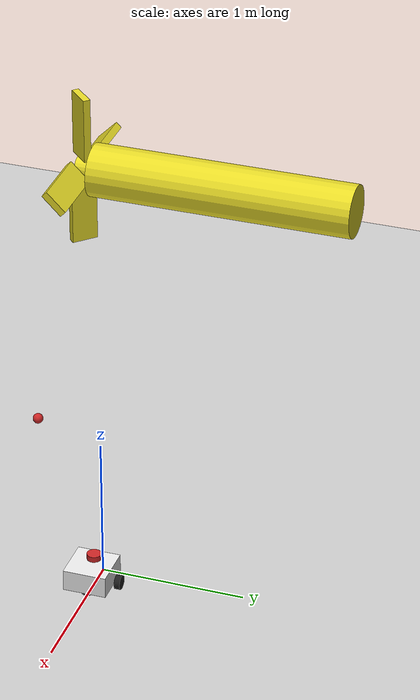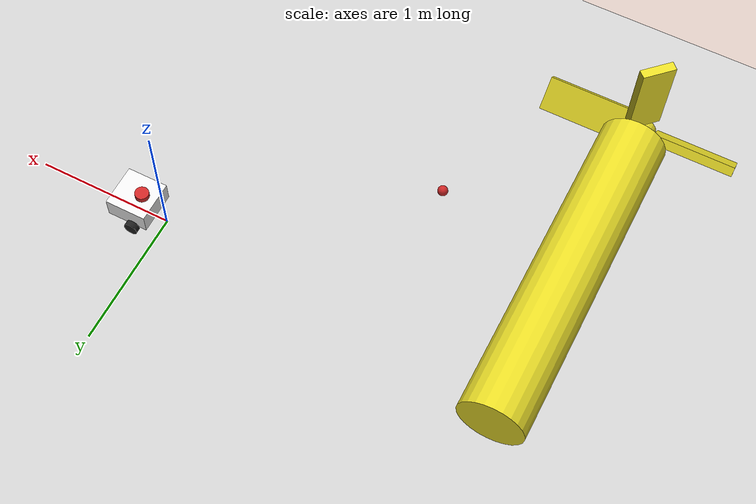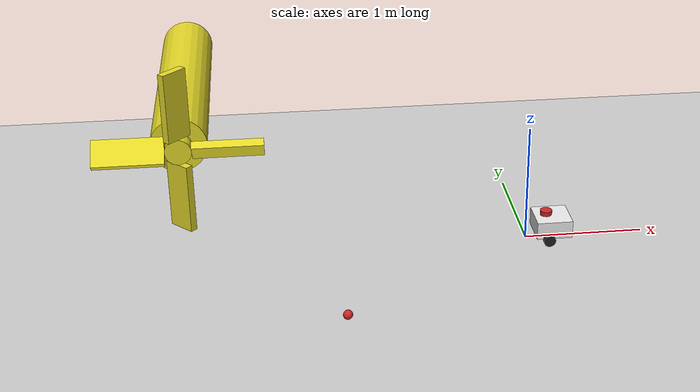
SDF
<sdf version="1.7">
 <world name="default">
  <light name="sun" type="directional">
   <pose>0 0 10 0 -0 0</pose>
   <diffuse>0.8 0.8 0.8 1</diffuse>
   <specular>0.2 0.2 0.2 1</specular>
   <attenuation>
    <range>1000</range>
    <constant>0.9</constant>
    <linear>0.01</linear>
    <quadratic>0.001</quadratic>
   </attenuation>
   <direction>-0.5 0.1 -0.9</direction>
   <spot><inner_angle>0</inner_angle><outer_angle>0</outer_angle><falloff>0</falloff></spot>
  </light>
  <model name="ground_plane">
   <static>1</static>
   <link name="link">
    <collision name="collision">
     <geometry><plane><normal>0 0 1</normal><size>100 100</size></plane></geometry>
     <surface>
      <contact><collide_bitmask>65535</collide_bitmask></contact>
      <friction><ode><mu>100</mu><mu2>50</mu2></ode></friction>
     </surface>
    </collision>
    <visual name="visual">
     <cast_shadows>0</cast_shadows>
     <geometry><plane><normal>0 0 1</normal><size>100 100</size></plane></geometry>
     <material>
      <script><uri>file://media/materials/scripts/gazebo.material</uri><name>Gazebo/Grey</name></script>
     </material>
    </visual>
   </link>
  </model>
  <gravity>0 0 -9.8</gravity>
  <magnetic_field>6e-06 2.3e-05 -4.2e-05</magnetic_field>
  <atmosphere type="adiabatic"/>
  <physics type="ode">
   <max_step_size>0.001</max_step_size>
   <real_time_factor>1</real_time_factor>
   <real_time_update_rate>1000</real_time_update_rate>
  </physics>
  <scene><ambient>0.4 0.4 0.4 1</ambient><background>0.7 0.7 0.7 1</background><shadows>1</shadows></scene>
  <audio><device>default</device></audio>
  <spherical_coordinates>
   <surface_model>EARTH_WGS84</surface_model>
   <latitude_deg>0</latitude_deg>
   <longitude_deg>0</longitude_deg>
   <elevation>0</elevation>
   <heading_deg>0</heading_deg>
  </spherical_coordinates>
  <model name="my_bot">
   <link name="base_link">
    <inertial>
     <pose>0.055714 0 0.078571 0 -0 0</pose>
     <mass>0.7</mass>
     <inertia>
      <ixx>0.0064169</ixx>
      <ixy>0</ixy>
      <ixz>0.00118929</ixz>
      <iyy>0.00745405</iyy>
      <iyz>0</iyz>
      <izz>0.00876214</izz>
     </inertia>
    </inertial>
    <collision name="base_link_fixed_joint_lump__chassis_collision">
     <pose>0.05 0 0.075 0 -0 0</pose>
     <geometry><box><size>0.3 0.3 0.15</size></box></geometry>
    </collision>
    <collision name="base_link_fixed_joint_lump__caster_wheel_collision_1">
     <pose>0.14 0 0 0 -0 0</pose>
     <geometry><sphere><radius>0.05</radius></sphere></geometry>
     <surface><friction><ode><mu>0.001</mu><mu2>0.001</mu2></ode></friction></surface>
    </collision>
    <collision name="base_link_fixed_joint_lump__laser_frame_collision_2">
     <pose>0 0 0.175 0 -0 0</pose>
     <geometry><cylinder><length>0.04</length><radius>0.05</radius></cylinder></geometry>
    </collision>
    <visual name="base_link_fixed_joint_lump__chassis_visual">
     <pose>0.05 0 0.075 0 -0 0</pose>
     <geometry><box><size>0.3 0.3 0.15</size></box></geometry>
     <material>
      <script><name>Gazebo/White</name><uri>file://media/materials/scripts/gazebo.material</uri></script>
     </material>
    </visual>
    <visual name="base_link_fixed_joint_lump__caster_wheel_visual_1">
     <pose>0.14 0 0 0 -0 0</pose>
     <geometry><sphere><radius>0.05</radius></sphere></geometry>
     <material>
      <script><name>Gazebo/Black</name><uri>file://media/materials/scripts/gazebo.material</uri></script>
     </material>
    </visual>
    <visual name="base_link_fixed_joint_lump__laser_frame_visual_2">
     <pose>0 0 0.175 0 -0 0</pose>
     <geometry><cylinder><length>0.04</length><radius>0.05</radius></cylinder></geometry>
     <material>
      <script><name>Gazebo/Red</name><uri>file://media/materials/scripts/gazebo.material</uri></script>
     </material>
    </visual>
    <sensor name="laser" type="ray">
     <visualize>1</visualize>
     <update_rate>10</update_rate>
     <ray>
      <scan>
       <horizontal>
        <samples>360</samples>
        <min_angle>-3.14</min_angle>
        <max_angle>3.14</max_angle>
        <resolution>1</resolution>
       </horizontal>
       <vertical><samples>1</samples><min_angle>0</min_angle><max_angle>0</max_angle></vertical>
      </scan>
      <range><min>0.3</min><max>12</max></range>
     </ray>
     <plugin name="laser_controller" filename="libgazebo_ros_ray_sensor.so">
      <ros><argument>~/out:=scan</argument></ros>
      <output_type>sensor_msgs/LaserScan</output_type>
      <frame_name>laser_frame</frame_name>
     </plugin>
     <pose>0 0 0.175 0 -0 0</pose>
    </sensor>
   </link>
   <joint name="left_wheel_joint" type="revolute">
    <pose relative_to="base_link">0 0.175 0 -1.5708 0 0</pose>
    <parent>base_link</parent>
    <child>left_wheel</child>
    <axis>
     <xyz>0 0 1</xyz>
     <limit><lower>-1e+16</lower><upper>1e+16</upper></limit>
     <dynamics><spring_reference>0</spring_reference><spring_stiffness>0</spring_stiffness></dynamics>
    </axis>
   </joint>
   <link name="left_wheel">
    <pose relative_to="left_wheel_joint">0 0 0 0 -0 0</pose>
    <inertial>
     <mass>0.1</mass>
     <inertia>
      <ixx>8.33333e-05</ixx>
      <ixy>0</ixy>
      <ixz>0</ixz>
      <iyy>8.33333e-05</iyy>
      <iyz>0</iyz>
      <izz>0.000125</izz>
     </inertia>
    </inertial>
    <collision name="left_wheel_collision">
     <geometry><cylinder><length>0.04</length><radius>0.05</radius></cylinder></geometry>
    </collision>
    <visual name="left_wheel_visual">
     <geometry><cylinder><length>0.04</length><radius>0.05</radius></cylinder></geometry>
     <material>
      <script><name>Gazebo/Black</name><uri>file://media/materials/scripts/gazebo.material</uri></script>
     </material>
    </visual>
   </link>
   <joint name="right_wheel_joint" type="revolute">
    <pose relative_to="base_link">0 -0.175 0 1.5708 -0 0</pose>
    <parent>base_link</parent>
    <child>right_wheel</child>
    <axis>
     <xyz>0 0 -1</xyz>
     <limit><lower>-1e+16</lower><upper>1e+16</upper></limit>
     <dynamics><spring_reference>0</spring_reference><spring_stiffness>0</spring_stiffness></dynamics>
    </axis>
   </joint>
   <link name="right_wheel">
    <pose relative_to="right_wheel_joint">0 0 0 0 -0 0</pose>
    <inertial>
     <mass>0.1</mass>
     <inertia>
      <ixx>8.33333e-05</ixx>
      <ixy>0</ixy>
      <ixz>0</ixz>
      <iyy>8.33333e-05</iyy>
      <iyz>0</iyz>
      <izz>0.000125</izz>
     </inertia>
    </inertial>
    <collision name="right_wheel_collision">
     <geometry><cylinder><length>0.04</length><radius>0.05</radius></cylinder></geometry>
    </collision>
    <visual name="right_wheel_visual">
     <geometry><cylinder><length>0.04</length><radius>0.05</radius></cylinder></geometry>
     <material>
      <script><name>Gazebo/Black</name><uri>file://media/materials/scripts/gazebo.material</uri></script>
     </material>
    </visual>
   </link>
   <static>0</static>
   <plugin name="diff_drive" filename="libgazebo_ros_diff_drive.so">
    <left_joint>left_wheel_joint</left_joint>
    <right_joint>right_wheel_joint</right_joint>
    <wheel_separation>0.35</wheel_separation>
    <wheel_diameter>0.1</wheel_diameter>
    <max_wheel_torque>200</max_wheel_torque>
    <max_wheel_acceleration>10.0</max_wheel_acceleration>
    <odometry_frame>odom</odometry_frame>
    <robot_base_frame>base_link</robot_base_frame>
    <publish_odom>1</publish_odom>
    <publish_odom_tf>1</publish_odom_tf>
    <publish_wheel_tf>1</publish_wheel_tf>
   </plugin>
   <pose>0.168657 -0.00011 0.049998 -1.5e-05 -1.8e-05 0.001924</pose>
  </model>
  <model name="cricket_ball">
   <link name="link">
    <pose>0 0 0.0375 0 -0 0</pose>
    <inertial>
     <mass>0.1467</mass>
     <inertia>
      <ixx>8.25187e-05</ixx>
      <ixy>0</ixy>
      <ixz>0</ixz>
      <iyy>8.25187e-05</iyy>
      <iyz>0</iyz>
      <izz>8.25187e-05</izz>
     </inertia>
    </inertial>
    <collision name="collision">
     <geometry><sphere><radius>0.0375</radius></sphere></geometry>
     <surface>
      <contact>
       <poissons_ratio>0.347</poissons_ratio>
       <elastic_modulus>8.8e+09</elastic_modulus>
       <ode><kp>100000</kp><kd>100</kd><max_vel>100</max_vel><min_depth>0.001</min_depth></ode>
      </contact>
      <friction>
       <torsional>
        <coefficient>1</coefficient>
        <use_patch_radius>0</use_patch_radius>
        <surface_radius>0.01</surface_radius>
       </torsional>
      </friction>
     </surface>
    </collision>
    <visual name="visual">
     <geometry><sphere><radius>0.0375</radius></sphere></geometry>
     <material>
      <script><uri>file://media/materials/scripts/gazebo.material</uri><name>Gazebo/Red</name></script>
     </material>
    </visual>
    <velocity_decay><linear>0</linear><angular>0.005</angular></velocity_decay>
   </link>
   <pose>-1.59212 -1.08784 -0.001014 0 -0 0</pose>
  </model>
  <model name="submarine">
   <pose>-2.74653 -0.056665 1.50483 1.57182 -0 0</pose>
   <link name="body">
    <inertial>
     <mass>251.327</mass>
     <inertia><ixx>86.2891</ixx><ixy>0</ixy><ixz>0</ixz><iyy>86.2891</iyy><iyz>0</iyz><izz>5.02655</izz></inertia>
    </inertial>
    <visual name="body_visual">
     <geometry><cylinder><radius>0.2</radius><length>2</length></cylinder></geometry>
     <material>
      <script><uri>file://media/materials/scripts/gazebo.material</uri><name>Gazebo/Yellow</name></script>
     </material>
    </visual>
    <collision name="body_collision">
     <geometry><cylinder><radius>0.2</radius><length>2</length></cylinder></geometry>
    </collision>
    <visual name="spacer_visual">
     <pose>0 0 1.05855 0 -0 0</pose>
     <geometry><cylinder><radius>0.0933402</radius><length>0.127211</length></cylinder></geometry>
     <material>
      <script><uri>file://media/materials/scripts/gazebo.material</uri><name>Gazebo/Yellow</name></script>
     </material>
    </visual>
   </link>
   <link name="propeller">
    <pose>0 0 1.09 3.14159 -0 0</pose>
    <inertial>
     <mass>21.82</mass>
     <inertia>
      <ixx>0.459994</ixx>
      <ixy>0</ixy>
      <ixz>0</ixz>
      <iyy>0.459994</iyy>
      <iyz>0</iyz>
      <izz>0.909167</izz>
     </inertia>
    </inertial>
    <visual name="blade1_visual">
     <pose>0.34334 0 0 0.785398 -0 0</pose>
     <geometry><box><size>0.5 0.2 0.05455</size></box></geometry>
     <material>
      <script><uri>file://media/materials/scripts/gazebo.material</uri><name>Gazebo/Yellow</name></script>
     </material>
    </visual>
    <collision name="blade1_collision">
     <pose>0.34334 0 0 0.785398 -0 0</pose>
     <geometry><box><size>0.5 0.2 0.05455</size></box></geometry>
    </collision>
    <visual name="blade2_visual">
     <pose>0 0.34334 0 0.785398 0 1.5708</pose>
     <geometry><box><size>0.5 0.2 0.05455</size></box></geometry>
     <material>
      <script><uri>file://media/materials/scripts/gazebo.material</uri><name>Gazebo/Yellow</name></script>
     </material>
    </visual>
    <collision name="blade2_collision">
     <pose>0 0.34334 0 0.785398 0 1.5708</pose>
     <geometry><box><size>0.5 0.2 0.05455</size></box></geometry>
    </collision>
    <visual name="blade3_visual">
     <pose>-0.34334 -0 0 -0.785398 0 0</pose>
     <geometry><box><size>0.5 0.2 0.05455</size></box></geometry>
     <material>
      <script><uri>file://media/materials/scripts/gazebo.material</uri><name>Gazebo/Yellow</name></script>
     </material>
    </visual>
    <collision name="blade3_collision">
     <pose>-0.34334 -0 0 -0.785398 0 0</pose>
     <geometry><box><size>0.5 0.2 0.05455</size></box></geometry>
    </collision>
    <visual name="blade4_visual">
     <pose>-0 -0.34334 0 -0.785398 -0 1.5708</pose>
     <geometry><box><size>0.5 0.2 0.05455</size></box></geometry>
     <material>
      <script><uri>file://media/materials/scripts/gazebo.material</uri><name>Gazebo/Yellow</name></script>
     </material>
    </visual>
    <collision name="blade4_collision">
     <pose>-0 -0.34334 0 -0.785398 -0 1.5708</pose>
     <geometry><box><size>0.5 0.2 0.05455</size></box></geometry>
    </collision>
   </link>
   <joint name="spinning_joint" type="revolute">
    <parent>body</parent>
    <child>propeller</child>
    <axis>
     <xyz expressed_in="__model__">0 0 1</xyz>
     <limit><lower>-1e+12</lower><upper>1e+12</upper><effort>-1</effort><velocity>-1</velocity></limit>
     <dynamics><spring_reference>0</spring_reference><spring_stiffness>0</spring_stiffness></dynamics>
    </axis>
   </joint>
   <plugin name="submarine_propeller_1" filename="libLiftDragPlugin.so">
    <air_density>1000</air_density>
    <cla>1.2535816618911175</cla>
    <cla_stall>-1.4326647564469914</cla_stall>
    <cda>0</cda>
    <cda_stall>1.4326647564469914</cda_stall>
    <alpha_stall>1.396</alpha_stall>
    <a0>0</a0>
    <area>0.27637</area>
    <upward>0 -0.7071067811865476 -0.7071067811865475</upward>
    <forward>0 -0.7071067811865475 0.7071067811865476</forward>
    <link_name>propeller</link_name>
    <cp>0.35 0 0</cp>
   </plugin>
   <plugin name="submarine_propeller_2" filename="libLiftDragPlugin.so">
    <air_density>1000</air_density>
    <cla>1.2535816618911175</cla>
    <cla_stall>-1.4326647564469914</cla_stall>
    <cda>0</cda>
    <cda_stall>1.4326647564469914</cda_stall>
    <alpha_stall>1.396</alpha_stall>
    <a0>0</a0>
    <area>0.27637</area>
    <upward>-0.7071067811865475 0 -0.7071067811865476</upward>
    <forward>-0.7071067811865476 0 0.7071067811865475</forward>
    <link_name>propeller</link_name>
    <cp>0 -0.35 0</cp>
   </plugin>
   <plugin name="submarine_propeller_3" filename="libLiftDragPlugin.so">
    <air_density>1000</air_density>
    <cla>1.2535816618911175</cla>
    <cla_stall>-1.4326647564469914</cla_stall>
    <cda>0</cda>
    <cda_stall>1.4326647564469914</cda_stall>
    <alpha_stall>1.396</alpha_stall>
    <a0>0</a0>
    <area>0.27637</area>
    <upward>0 0.7071067811865475 -0.7071067811865476</upward>
    <forward>0 -0.7071067811865476 -0.7071067811865475</forward>
    <link_name>propeller</link_name>
    <cp>-0.35 0 0</cp>
   </plugin>
   <plugin name="submarine_propeller_4" filename="libLiftDragPlugin.so">
    <air_density>1000</air_density>
    <cla>1.2535816618911175</cla>
    <cla_stall>-1.4326647564469914</cla_stall>
    <cda>0</cda>
    <cda_stall>1.4326647564469914</cda_stall>
    <alpha_stall>1.396</alpha_stall>
    <a0>0</a0>
    <area>0.27637</area>
    <upward>0.7071067811865476 0 -0.7071067811865475</upward>
    <forward>0.7071067811865475 0 0.7071067811865476</forward>
    <link_name>propeller</link_name>
    <cp>0 0.35 0</cp>
   </plugin>
   <plugin name="buoyancy" filename="libBuoyancyPlugin.so"><fluid_density>1000</fluid_density></plugin>
  </model>
 </world>
</sdf>
